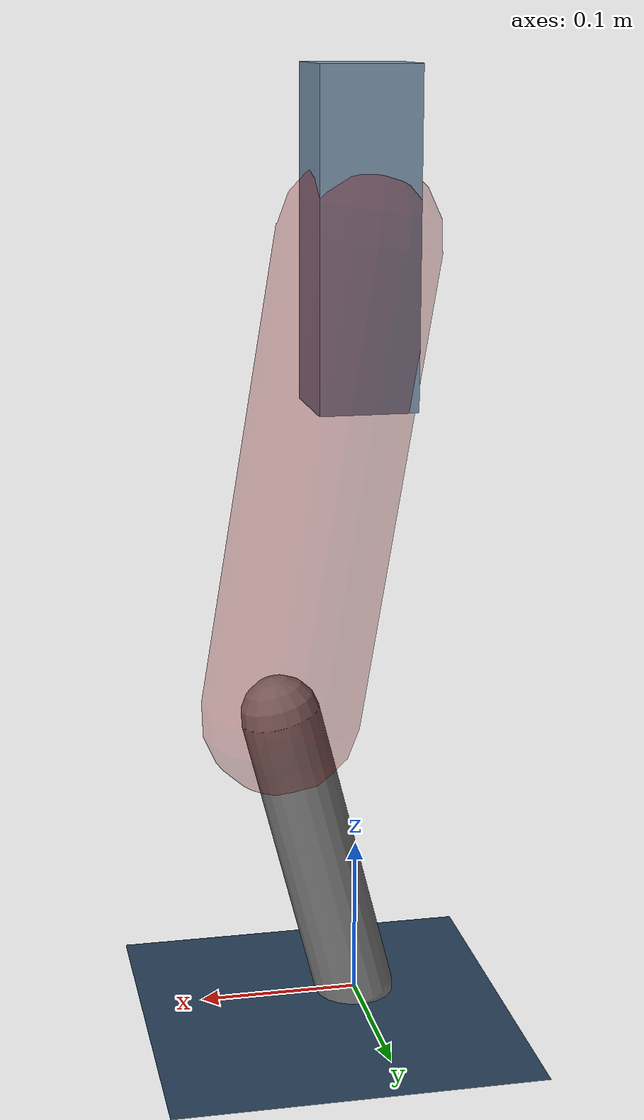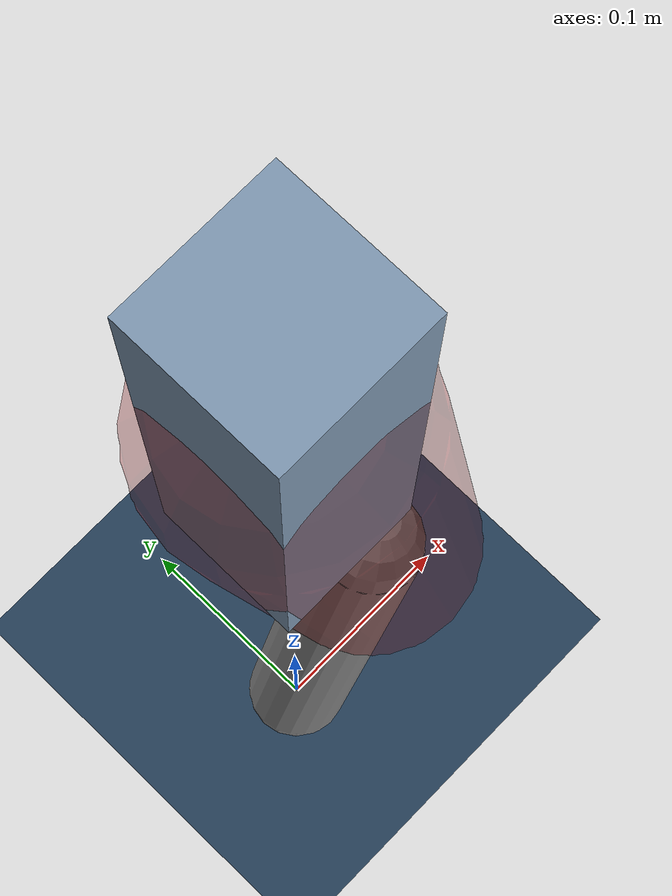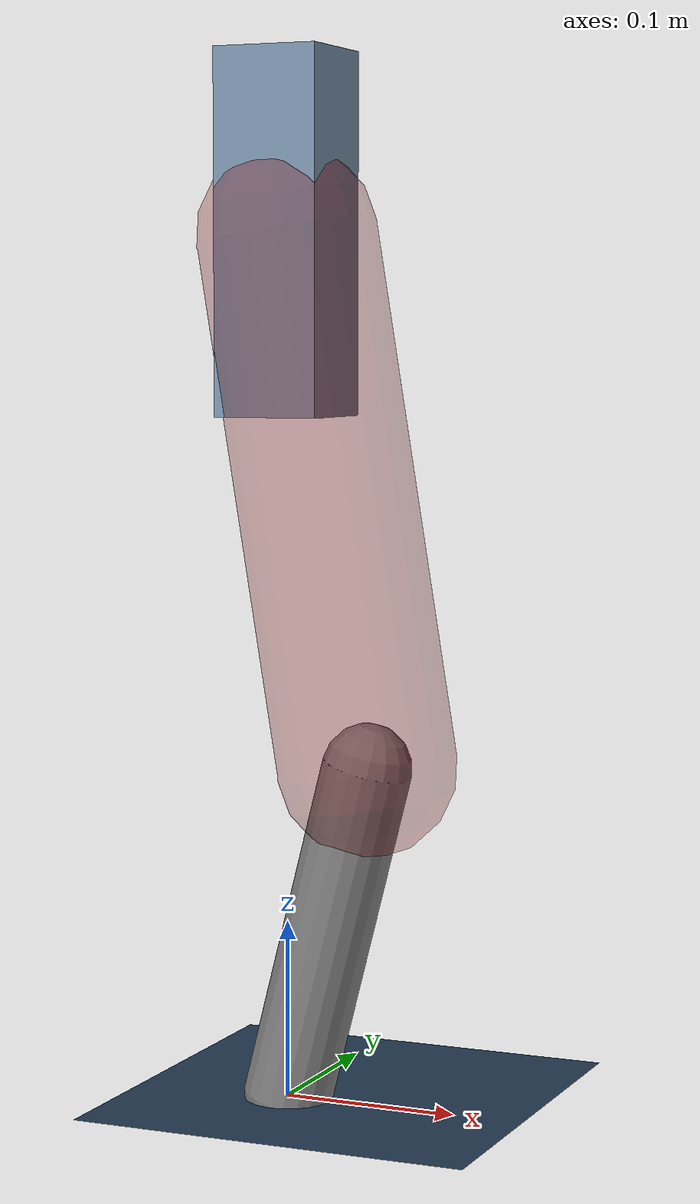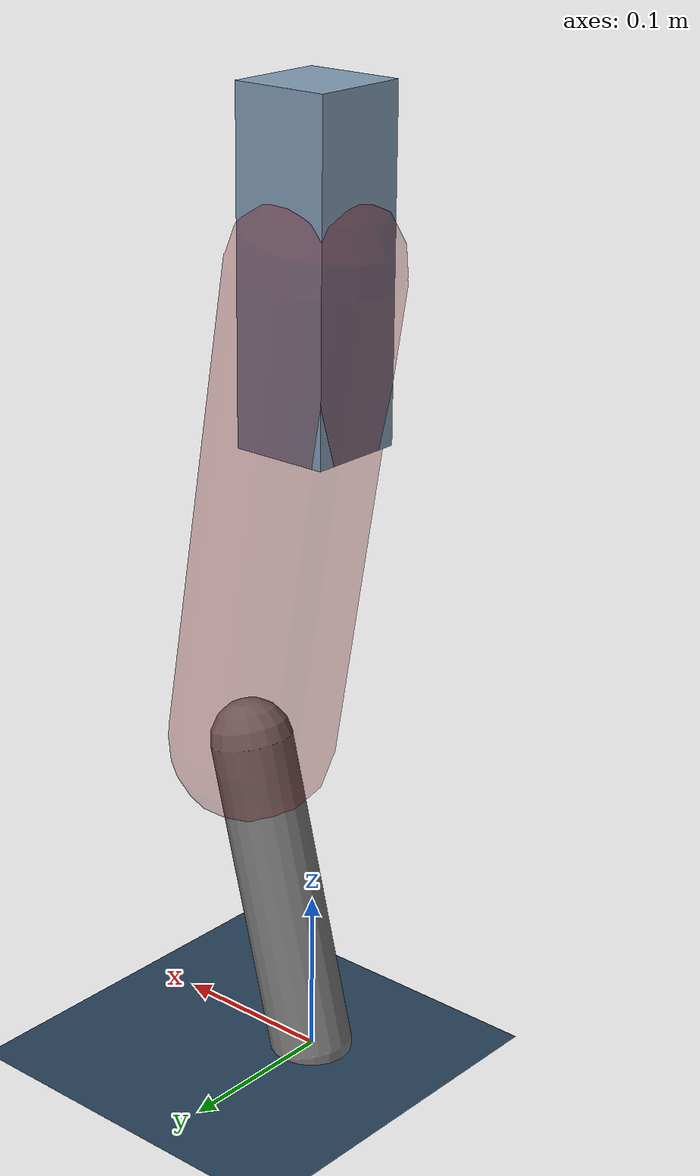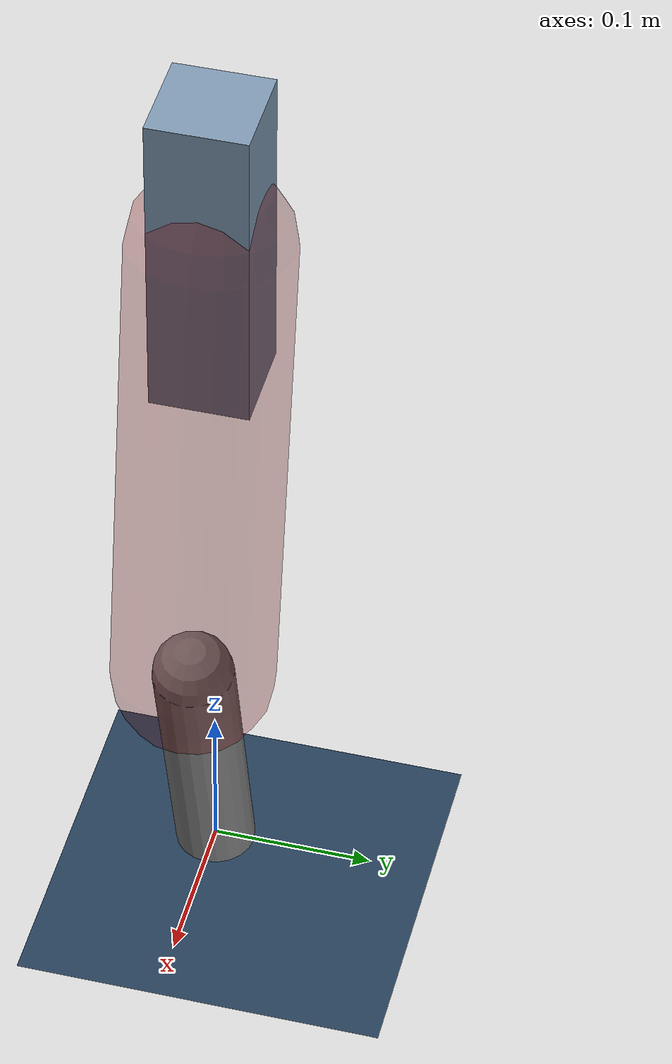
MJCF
<mujoco model="Hopper2D">
	<compiler inertiafromgeom="true" angle="radian" />
	<option timestep="0.001" integrator="implicit" cone="elliptic" solver="Newton" tolerance="1e-10" />

	<default>
		<geom contype="1" conaffinity="1" condim="3" friction="2 0.005 0.0001" solref="0.005 1" />
		<joint limited="true" damping="0.1" />
	</default>

	<asset>
		<texture name="skybox" type="skybox" builtin="gradient" rgb1=".4 .6 .8" rgb2="0 0 0" width="800" height="800" />
		<texture name="grid" type="2d" builtin="checker" rgb1=".1 .2 .3" rgb2=".2 .3 .4" width="300" height="300" mark="edge" markrgb=".2 .3 .4" />
		<material name="ground" texture="grid" texrepeat="1 1" texuniform="true" reflectance="0.1" />
		<material name="leg" rgba="0.5 0.6 0.7 1" />
	</asset>

	<worldbody>

		<geom name="floor" type="plane" size="5 5 0.25" material="ground" />

		<light directional="false" diffuse="0.8 0.8 0.8" specular="0.3 0.3 0.3" pos="0 0 2" dir="0 0 -1" />
		<light mode="targetbodycom" target="base" directional="false" diffuse="0.8 0.8 0.8" specular="0.3 0.3 0.3" pos="0 0 2" dir="0 0 -1" />

		<camera name="fixed" pos="0 -2 1" xyaxes="1 0 0 0 0 1" />
		<camera name="tracking" mode="trackcom" pos="0 -3 1" />

		<body name="root" pos="0 0 0.4837066573171032">
			<joint name="slide_x" type="slide" axis="1 0 0" range="-100 100" />
			<joint name="slide_z" type="slide" axis="0 0 1" range="0 10" />

			<body name="base" pos="0 0 0">
				<geom name="torso" type="box" size="0.03 0.03 0.1" mass="2.5839999999999996" material="leg" />

				<body name="link1" pos="0 0 0" euler="0 1.4074332262867073 0">
					<joint type="hinge" axis="0 -1 0" pos="0 0 0" name="hinge1" limited="true" range="-3.14 3.14" stiffness="0" damping="0.1" />
					<geom name="thigh" type="capsule" fromto="0 0 0 0.2972646597324578 0 0" size="0.05" rgba="0.5 0 0 0.3" mass="0.9813145812776362" />

					<body name="link2" pos="0.2972646597324578 0 0" euler="0 0.4120279799778496 0">
						<joint type="hinge" axis="0 -1 0" pos="0 0 0" name="hinge2" limited="true" range="-3.14 3.14" stiffness="0" damping="0.1" />
						<geom name="shank" type="capsule" fromto="0 0 0 0.19644199758464542 0 0" size="0.025" mass="0.3978977978261809" />

					</body>
				</body>
			</body>
		</body>
	</worldbody>

	<actuator>
		<motor name="torque1" joint="hinge1" ctrlrange="-97.90380068750633 97.90380068750633" ctrllimited="true" gear="1" />
		<motor name="torque2" joint="hinge2" ctrlrange="-99.47479005942925 99.47479005942925" ctrllimited="true" gear="1" />
	</actuator>
</mujoco>
